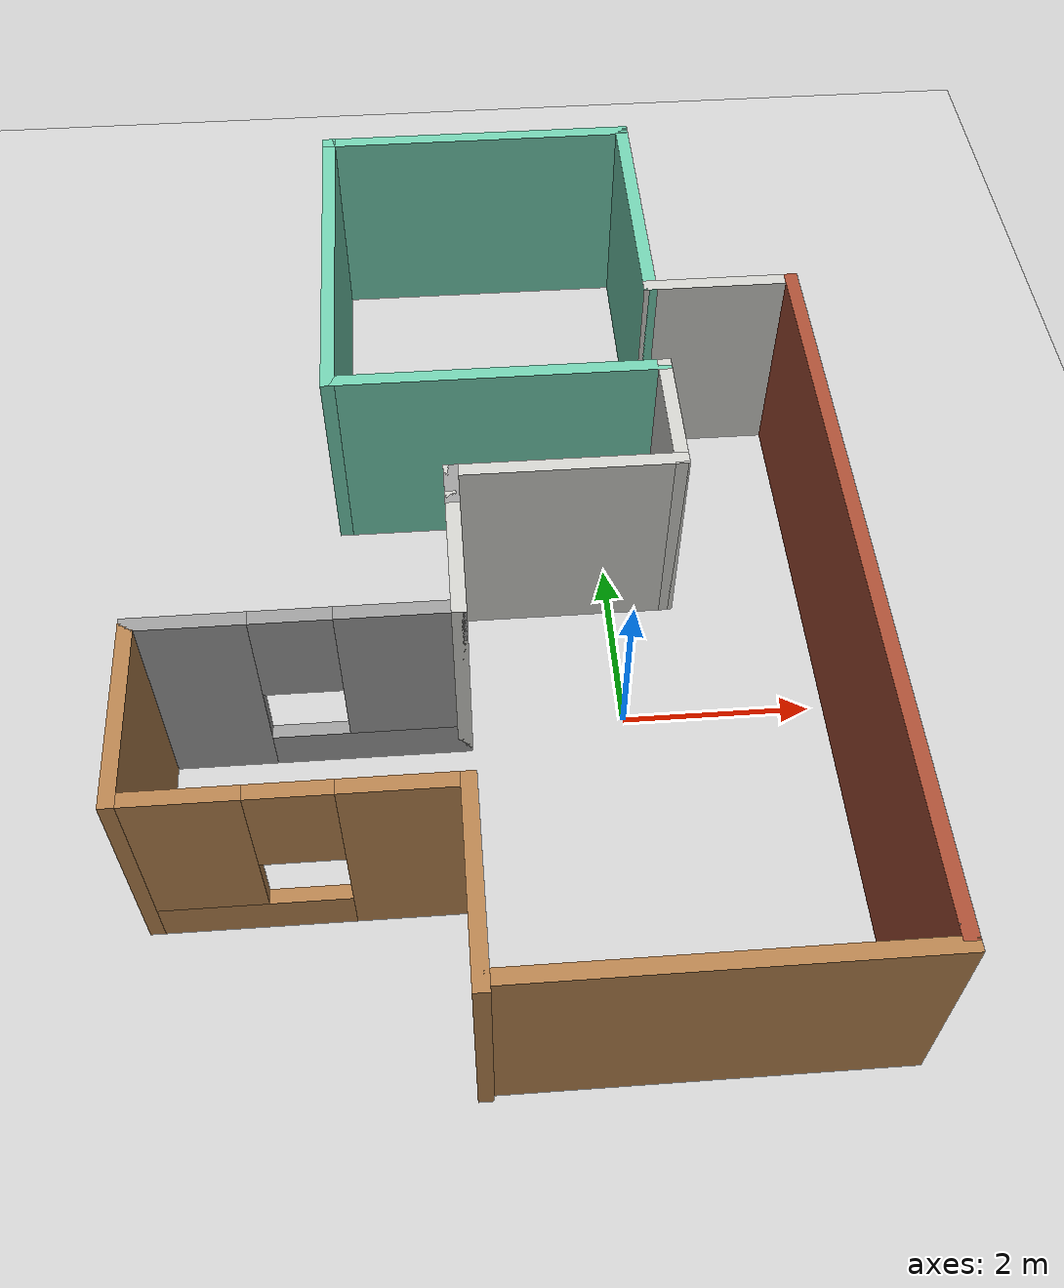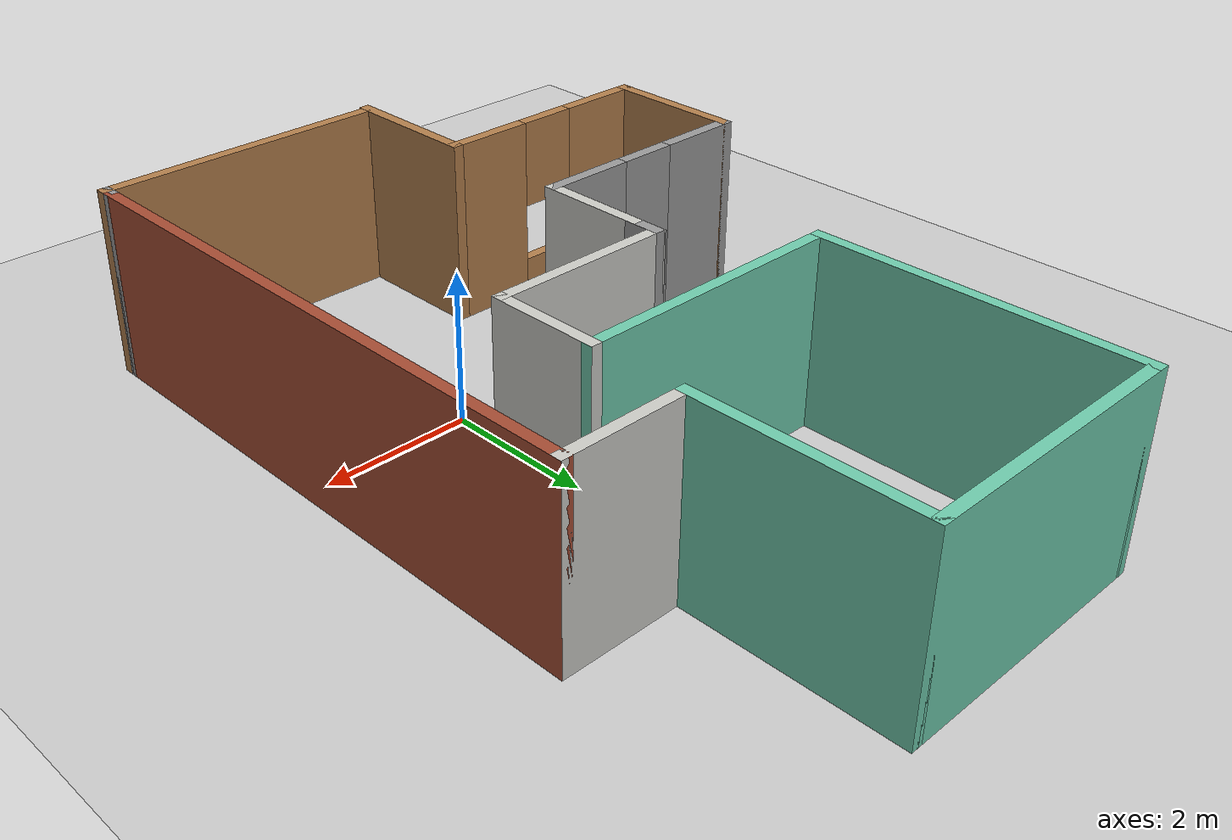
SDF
<sdf version="1.6">
 <world name="default">
  <model name="ground_plane">
   <static>1</static>
   <link name="link">
    <collision name="collision">
     <geometry><plane><normal>0 0 1</normal><size>100 100</size></plane></geometry>
     <surface><friction><ode><mu>100</mu><mu2>50</mu2></ode></friction></surface>
    </collision>
    <visual name="visual">
     <cast_shadows>0</cast_shadows>
     <geometry><plane><normal>0 0 1</normal><size>100 100</size></plane></geometry>
     <material>
      <script><uri>file://media/materials/scripts/gazebo.material</uri><name>Gazebo/Grey</name></script>
     </material>
    </visual>
   </link>
  </model>
  <model name="MyApart">
   <pose>-1.28379 1.53493 0 0 -0 0</pose>
   <link name="Wall_0">
    <collision name="Wall_0_Collision">
     <geometry><box><size>2 0.15 2.5</size></box></geometry>
     <pose>0 0 1.25 0 -0 0</pose>
    </collision>
    <visual name="Wall_0_Visual">
     <pose>0 0 1.25 0 -0 0</pose>
     <geometry><box><size>2 0.15 2.5</size></box></geometry>
     <material>
      <script><uri>file://media/materials/scripts/gazebo.material</uri><name>Gazebo/Wood</name></script>
      <ambient>1 0.764706 0.305882 1</ambient>
     </material>
     <meta><layer>0</layer></meta>
    </visual>
    <pose>-0.425 -4.5 0 0 -0 1.5708</pose>
   </link>
   <link name="Wall_1">
    <pose>-1.975 -3.575 0 0 -0 3.14159</pose>
    <visual name="Wall_1_Visual_0">
     <pose>-1.00948 0 1.25 0 -0 0</pose>
     <geometry><box><size>1.23103 0.15 2.5</size></box></geometry>
     <material>
      <script><uri>file://media/materials/scripts/gazebo.material</uri><name>Gazebo/Wood</name></script>
      <ambient>1 0.764706 0.305882 1</ambient>
     </material>
     <meta><layer>0</layer></meta>
    </visual>
    <collision name="Wall_1_Collision_0">
     <geometry><box><size>1.23103 0.15 2.5</size></box></geometry>
     <pose>-1.00948 0 1.25 0 -0 0</pose>
    </collision>
    <visual name="Wall_1_Visual_1">
     <pose>0.615517 0 0.25 0 -0 0</pose>
     <geometry><box><size>2.01897 0.15 0.5</size></box></geometry>
     <material>
      <script><uri>file://media/materials/scripts/gazebo.material</uri><name>Gazebo/Wood</name></script>
      <ambient>1 0.764706 0.305882 1</ambient>
     </material>
     <meta><layer>0</layer></meta>
    </visual>
    <collision name="Wall_1_Collision_1">
     <geometry><box><size>2.01897 0.15 0.5</size></box></geometry>
     <pose>0.615517 0 0.25 0 -0 0</pose>
    </collision>
    <visual name="Wall_1_Visual_2">
     <pose>1.01552 0 1.5 0 -0 0</pose>
     <geometry><box><size>1.21897 0.15 2</size></box></geometry>
     <material>
      <script><uri>file://media/materials/scripts/gazebo.material</uri><name>Gazebo/Wood</name></script>
      <ambient>1 0.764706 0.305882 1</ambient>
     </material>
     <meta><layer>0</layer></meta>
    </visual>
    <collision name="Wall_1_Collision_2">
     <geometry><box><size>1.21897 0.15 2</size></box></geometry>
     <pose>1.01552 0 1.5 0 -0 0</pose>
    </collision>
    <visual name="Wall_1_Visual_3">
     <pose>0.006034 0 1.9 0 -0 0</pose>
     <geometry><box><size>0.8 0.15 1.2</size></box></geometry>
     <material>
      <script><uri>file://media/materials/scripts/gazebo.material</uri><name>Gazebo/Wood</name></script>
      <ambient>1 0.764706 0.305882 1</ambient>
     </material>
     <meta><layer>0</layer></meta>
    </visual>
    <collision name="Wall_1_Collision_3">
     <geometry><box><size>0.8 0.15 1.2</size></box></geometry>
     <pose>0.006034 0 1.9 0 -0 0</pose>
    </collision>
   </link>
   <link name="Wall_10">
    <collision name="Wall_10_Collision">
     <geometry><box><size>4.25 0.15 2.5</size></box></geometry>
     <pose>0 0 1.25 0 -0 0</pose>
    </collision>
    <visual name="Wall_10_Visual">
     <pose>0 0 1.25 0 -0 0</pose>
     <geometry><box><size>4.25 0.15 2.5</size></box></geometry>
     <material>
      <script><uri>file://media/materials/scripts/gazebo.material</uri><name>Gazebo/Grey</name></script>
      <ambient>0.435294 0.796078 0.67451 1</ambient>
     </material>
     <meta><layer>0</layer></meta>
    </visual>
    <pose>-1.675 3.375 0 0 -0 1.5708</pose>
   </link>
   <link name="Wall_11">
    <collision name="Wall_11_Collision">
     <geometry><box><size>3.75 0.15 2.5</size></box></geometry>
     <pose>0 0 1.25 0 -0 0</pose>
    </collision>
    <visual name="Wall_11_Visual">
     <pose>0 0 1.25 0 -0 0</pose>
     <geometry><box><size>3.75 0.15 2.5</size></box></geometry>
     <material>
      <script><uri>file://media/materials/scripts/gazebo.material</uri><name>Gazebo/Grey</name></script>
      <ambient>0.435294 0.796078 0.67451 1</ambient>
     </material>
     <meta><layer>0</layer></meta>
    </visual>
    <pose>0.125 5.425 0 0 -0 0</pose>
   </link>
   <link name="Wall_12">
    <collision name="Wall_12_Collision">
     <geometry><box><size>3 0.15 2.5</size></box></geometry>
     <pose>0 0 1.25 0 -0 0</pose>
    </collision>
    <visual name="Wall_12_Visual">
     <pose>0 0 1.25 0 -0 0</pose>
     <geometry><box><size>3 0.15 2.5</size></box></geometry>
     <material>
      <script><uri>file://media/materials/scripts/gazebo.material</uri><name>Gazebo/Grey</name></script>
      <ambient>0.435294 0.796078 0.67451 1</ambient>
     </material>
     <meta><layer>0</layer></meta>
    </visual>
    <pose>1.925 4 0 0 0 -1.5708</pose>
   </link>
   <link name="Wall_13">
    <collision name="Wall_13_Collision">
     <geometry><box><size>1.75 0.15 2.5</size></box></geometry>
     <pose>0 0 1.25 0 -0 0</pose>
    </collision>
    <visual name="Wall_13_Visual">
     <pose>0 0 1.25 0 -0 0</pose>
     <geometry><box><size>1.75 0.15 2.5</size></box></geometry>
     <material>
      <script><uri>file://media/materials/scripts/gazebo.material</uri><name>Gazebo/CeilingTiled</name></script>
      <ambient>1 1 1 1</ambient>
     </material>
     <meta><layer>0</layer></meta>
    </visual>
    <pose>2.725 2.575 0 0 -0 0</pose>
   </link>
   <link name="Wall_14">
    <collision name="Wall_14_Collision">
     <geometry><box><size>8 0.15 2.5</size></box></geometry>
     <pose>0 0 1.25 0 -0 0</pose>
    </collision>
    <visual name="Wall_14_Visual">
     <pose>0 0 1.25 0 -0 0</pose>
     <geometry><box><size>8 0.15 2.5</size></box></geometry>
     <material>
      <script><uri>file://media/materials/scripts/gazebo.material</uri><name>Gazebo/Bricks</name></script>
      <ambient>1 1 1 1</ambient>
     </material>
     <meta><layer>0</layer></meta>
    </visual>
    <pose>3.525 -1.35 0 0 0 -1.5708</pose>
   </link>
   <link name="Wall_15">
    <collision name="Wall_15_Collision">
     <geometry><box><size>0.15 0.15 2.5</size></box></geometry>
     <pose>0 0 1.25 0 -0 0</pose>
    </collision>
    <visual name="Wall_15_Visual">
     <pose>0 0 1.25 0 -0 0</pose>
     <geometry><box><size>0.15 0.15 2.5</size></box></geometry>
     <material>
      <script><uri>file://media/materials/scripts/gazebo.material</uri><name>Gazebo/Grey</name></script>
      <ambient>1 1 1 1</ambient>
     </material>
     <meta><layer>0</layer></meta>
    </visual>
    <pose>3.525 -5.275 0 0 -0 0</pose>
   </link>
   <link name="Wall_16">
    <collision name="Wall_16_Collision">
     <geometry><box><size>0.25 0.15 2.5</size></box></geometry>
     <pose>0 0 1.25 0 -0 0</pose>
    </collision>
    <visual name="Wall_16_Visual">
     <pose>0 0 1.25 0 -0 0</pose>
     <geometry><box><size>0.25 0.15 2.5</size></box></geometry>
     <material>
      <script><uri>file://media/materials/scripts/gazebo.material</uri><name>Gazebo/Grey</name></script>
      <ambient>1 1 1 1</ambient>
     </material>
     <meta><layer>0</layer></meta>
    </visual>
    <pose>3.525 -5.325 0 0 0 -1.5708</pose>
   </link>
   <link name="Wall_17">
    <collision name="Wall_17_Collision">
     <geometry><box><size>4 0.15 2.5</size></box></geometry>
     <pose>0 0 1.25 0 -0 0</pose>
    </collision>
    <visual name="Wall_17_Visual">
     <pose>0 0 1.25 0 -0 0</pose>
     <geometry><box><size>4 0.15 2.5</size></box></geometry>
     <material>
      <script><uri>file://media/materials/scripts/gazebo.material</uri><name>Gazebo/Wood</name></script>
      <ambient>1 1 1 1</ambient>
     </material>
     <meta><layer>0</layer></meta>
    </visual>
    <pose>1.6 -5.375 0 0 -0 3.14159</pose>
   </link>
   <link name="Wall_2">
    <collision name="Wall_2_Collision">
     <geometry><box><size>2 0.15 2.5</size></box></geometry>
     <pose>0 0 1.25 0 -0 0</pose>
    </collision>
    <visual name="Wall_2_Visual">
     <pose>0 0 1.25 0 -0 0</pose>
     <geometry><box><size>2 0.15 2.5</size></box></geometry>
     <material>
      <script><uri>file://media/materials/scripts/gazebo.material</uri><name>Gazebo/Wood</name></script>
      <ambient>1 0.764706 0.305882 1</ambient>
     </material>
     <meta><layer>0</layer></meta>
    </visual>
    <pose>-3.525 -2.65 0 0 -0 1.5708</pose>
   </link>
   <link name="Wall_3">
    <pose>-1.975 -1.725 0 0 -0 0</pose>
    <visual name="Wall_3_Visual_0">
     <pose>-1.02708 0 1.25 0 -0 0</pose>
     <geometry><box><size>1.19583 0.15 2.5</size></box></geometry>
     <material>
      <script><uri>file://media/materials/scripts/gazebo.material</uri><name>Gazebo/Grey</name></script>
      <ambient>1 1 1 1</ambient>
     </material>
     <meta><layer>0</layer></meta>
    </visual>
    <collision name="Wall_3_Collision_0">
     <geometry><box><size>1.19583 0.15 2.5</size></box></geometry>
     <pose>-1.02708 0 1.25 0 -0 0</pose>
    </collision>
    <visual name="Wall_3_Visual_1">
     <pose>0.597918 0 0.25 0 -0 0</pose>
     <geometry><box><size>2.05416 0.15 0.5</size></box></geometry>
     <material>
      <script><uri>file://media/materials/scripts/gazebo.material</uri><name>Gazebo/Grey</name></script>
      <ambient>1 1 1 1</ambient>
     </material>
     <meta><layer>0</layer></meta>
    </visual>
    <collision name="Wall_3_Collision_1">
     <geometry><box><size>2.05416 0.15 0.5</size></box></geometry>
     <pose>0.597918 0 0.25 0 -0 0</pose>
    </collision>
    <visual name="Wall_3_Visual_2">
     <pose>0.997918 0 1.5 0 -0 0</pose>
     <geometry><box><size>1.25416 0.15 2</size></box></geometry>
     <material>
      <script><uri>file://media/materials/scripts/gazebo.material</uri><name>Gazebo/Grey</name></script>
      <ambient>1 1 1 1</ambient>
     </material>
     <meta><layer>0</layer></meta>
    </visual>
    <collision name="Wall_3_Collision_2">
     <geometry><box><size>1.25416 0.15 2</size></box></geometry>
     <pose>0.997918 0 1.5 0 -0 0</pose>
    </collision>
    <visual name="Wall_3_Visual_3">
     <pose>-0.029165 0 1.9 0 -0 0</pose>
     <geometry><box><size>0.8 0.15 1.2</size></box></geometry>
     <material>
      <script><uri>file://media/materials/scripts/gazebo.material</uri><name>Gazebo/Grey</name></script>
      <ambient>1 1 1 1</ambient>
     </material>
     <meta><layer>0</layer></meta>
    </visual>
    <collision name="Wall_3_Collision_3">
     <geometry><box><size>0.8 0.15 1.2</size></box></geometry>
     <pose>-0.029165 0 1.9 0 -0 0</pose>
    </collision>
   </link>
   <link name="Wall_4">
    <collision name="Wall_4_Collision">
     <geometry><box><size>1.5 0.15 2.5</size></box></geometry>
     <pose>0 0 1.25 0 -0 0</pose>
    </collision>
    <visual name="Wall_4_Visual">
     <pose>0 0 1.25 0 -0 0</pose>
     <geometry><box><size>1.5 0.15 2.5</size></box></geometry>
     <material>
      <script><uri>file://media/materials/scripts/gazebo.material</uri><name>Gazebo/CeilingTiled</name></script>
      <ambient>1 1 1 1</ambient>
     </material>
     <meta><layer>0</layer></meta>
    </visual>
    <pose>-0.425 -1.05 0 0 -0 1.5708</pose>
   </link>
   <link name="Wall_5">
    <collision name="Wall_5_Collision">
     <geometry><box><size>0.5 0.15 2.5</size></box></geometry>
     <pose>0 0 1.25 0 -0 0</pose>
    </collision>
    <visual name="Wall_5_Visual">
     <pose>0 0 1.25 0 -0 0</pose>
     <geometry><box><size>0.5 0.15 2.5</size></box></geometry>
     <material>
      <script><uri>file://media/materials/scripts/gazebo.material</uri><name>Gazebo/Grey</name></script>
      <ambient>1 1 1 1</ambient>
     </material>
     <meta><layer>0</layer></meta>
    </visual>
    <pose>-0.425 -0.2 0 0 -0 1.5708</pose>
   </link>
   <link name="Wall_6">
    <collision name="Wall_6_Collision">
     <geometry><box><size>2.5 0.15 2.5</size></box></geometry>
     <pose>0 0 1.25 0 -0 0</pose>
    </collision>
    <visual name="Wall_6_Visual">
     <pose>0 0 1.25 0 -0 0</pose>
     <geometry><box><size>2.5 0.15 2.5</size></box></geometry>
     <material>
      <script><uri>file://media/materials/scripts/gazebo.material</uri><name>Gazebo/CeilingTiled</name></script>
      <ambient>1 1 1 1</ambient>
     </material>
     <meta><layer>0</layer></meta>
    </visual>
    <pose>0.75 -0.025 0 0 -0 0</pose>
   </link>
   <link name="Wall_7">
    <collision name="Wall_7_Collision">
     <geometry><box><size>1.5 0.15 2.5</size></box></geometry>
     <pose>0 0 1.25 0 -0 0</pose>
    </collision>
    <visual name="Wall_7_Visual">
     <pose>0 0 1.25 0 -0 0</pose>
     <geometry><box><size>1.5 0.15 2.5</size></box></geometry>
     <material>
      <script><uri>file://media/materials/scripts/gazebo.material</uri><name>Gazebo/CeilingTiled</name></script>
      <ambient>0.996078 0.47451 0.0196078 1</ambient>
     </material>
     <meta><layer>0</layer></meta>
    </visual>
    <pose>1.925 0.65 0 0 -0 1.5708</pose>
   </link>
   <link name="Wall_9">
    <collision name="Wall_9_Collision">
     <geometry><box><size>3.75 0.15 2.5</size></box></geometry>
     <pose>0 0 1.25 0 -0 0</pose>
    </collision>
    <visual name="Wall_9_Visual">
     <pose>0 0 1.25 0 -0 0</pose>
     <geometry><box><size>3.75 0.15 2.5</size></box></geometry>
     <material>
      <script><uri>file://media/materials/scripts/gazebo.material</uri><name>Gazebo/Grey</name></script>
      <ambient>0.435294 0.796078 0.67451 1</ambient>
     </material>
     <meta><layer>0</layer></meta>
    </visual>
    <pose>0.125 1.325 0 0 -0 3.14159</pose>
   </link>
   <static>1</static>
  </model>
 </world>
</sdf>
